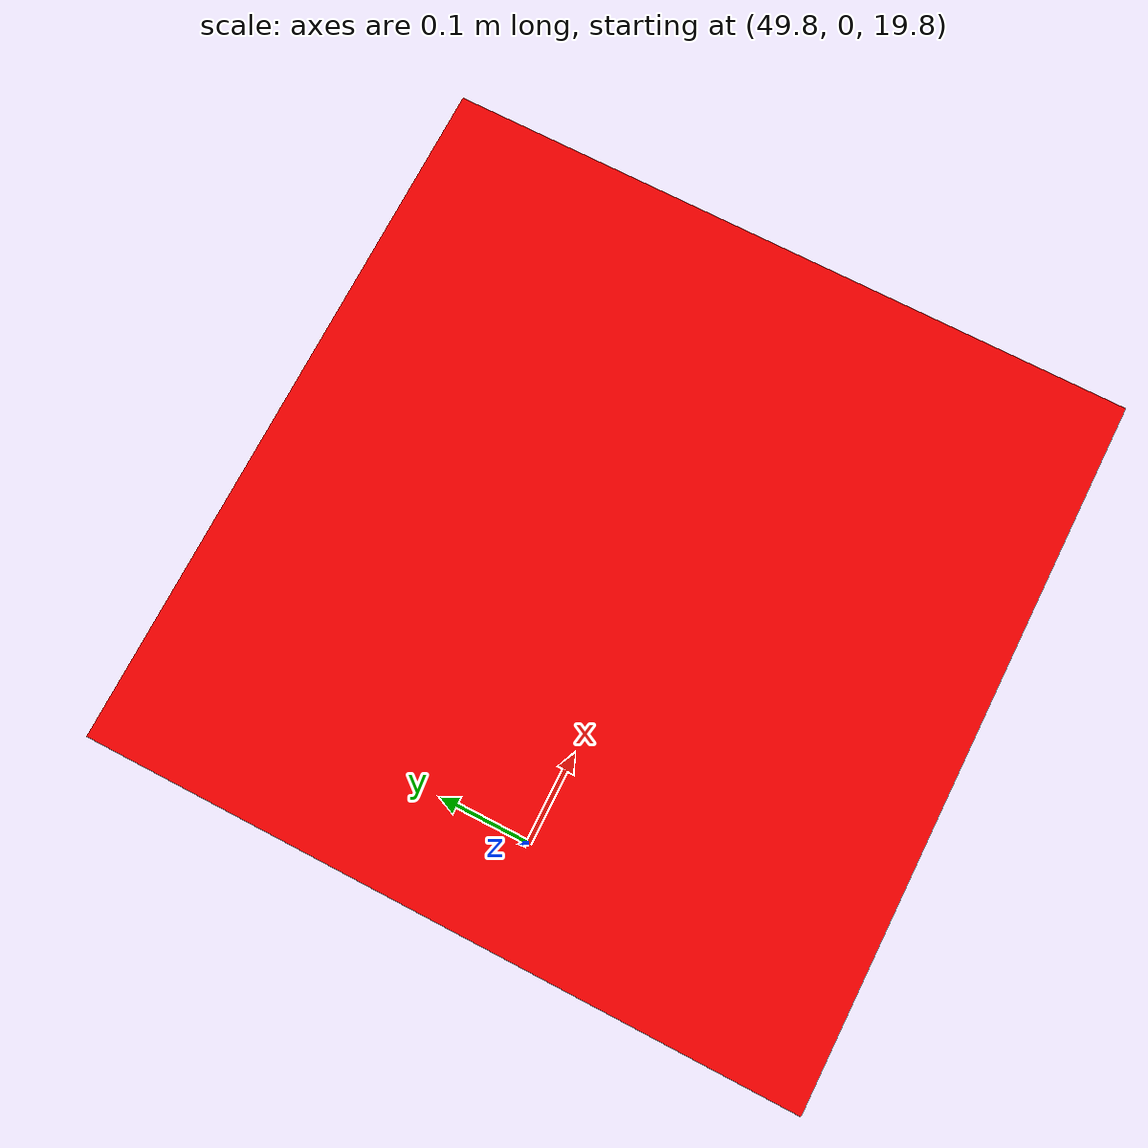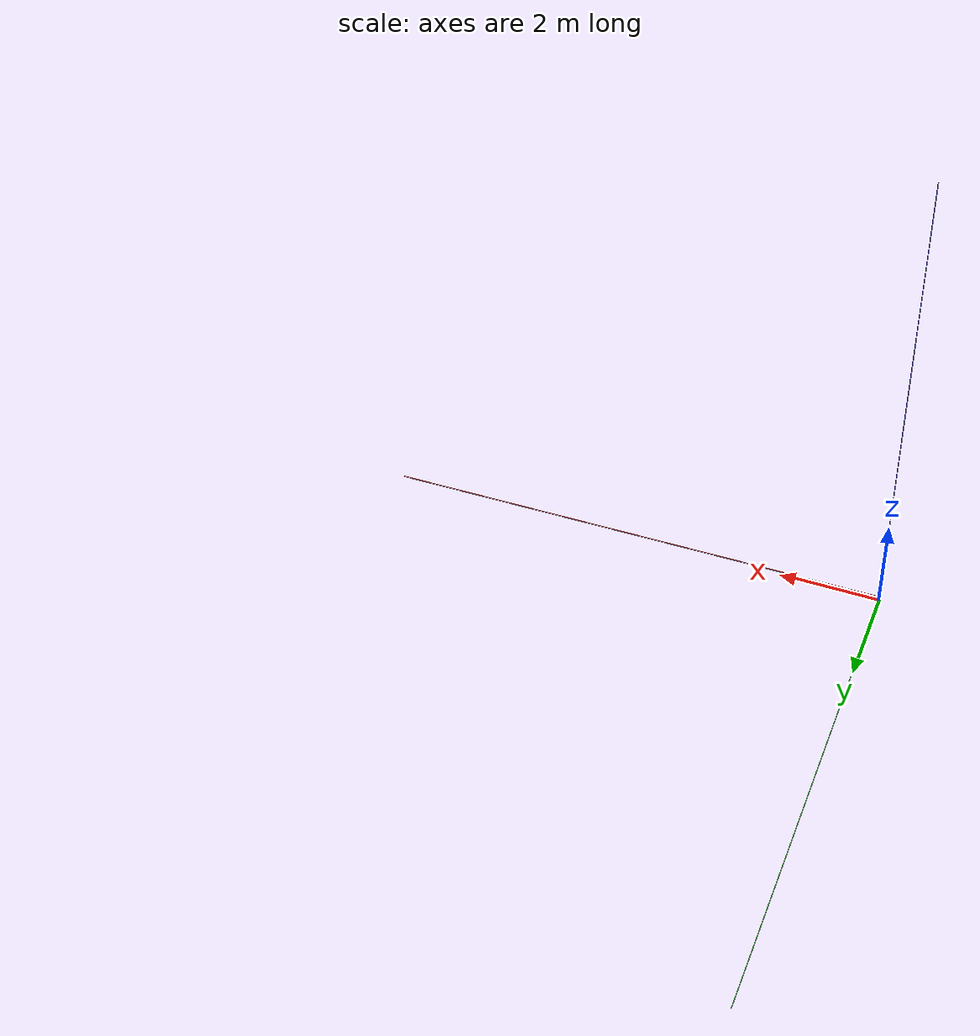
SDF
<sdf version="1.9">
 <world name="iris_runway">
  <physics name="1ms" type="ignore">
   <max_step_size>0.001</max_step_size>
   <real_time_factor>1.0</real_time_factor>
  </physics>
  <plugin filename="gz-sim-physics-system" name="gz::sim::systems::Physics"/>
  <plugin filename="gz-sim-sensors-system" name="gz::sim::systems::Sensors">
   <render_engine>ogre2</render_engine>
  </plugin>
  <plugin filename="gz-sim-user-commands-system" name="gz::sim::systems::UserCommands"/>
  <plugin filename="gz-sim-scene-broadcaster-system" name="gz::sim::systems::SceneBroadcaster"/>
  <plugin filename="gz-sim-imu-system" name="gz::sim::systems::Imu"/>
  <plugin filename="gz-sim-navsat-system" name="gz::sim::systems::NavSat"/>
  <wind><linear_velocity>0 0 0</linear_velocity></wind>
  <plugin filename="gz-sim-wind-effects-system" name="gz::sim::systems::WindEffects">
   <force_approximation_scaling_factor>1</force_approximation_scaling_factor>
  </plugin>
  <scene><ambient>1.0 1.0 1.0</ambient><background>0.8 0.8 0.8</background></scene>
  <spherical_coordinates>
   <latitude_deg>-35.363262</latitude_deg>
   <longitude_deg>149.165237</longitude_deg>
   <elevation>584</elevation>
   <heading_deg>0</heading_deg>
   <surface_model>EARTH_WGS84</surface_model>
  </spherical_coordinates>
  <light type="directional" name="sun">
   <pose>0 0 10 0 0 0</pose>
   <diffuse>0.8 0.8 0.8 1</diffuse>
   <specular>0.8 0.8 0.8 1</specular>
   <attenuation>
    <range>1000</range>
    <constant>0.9</constant>
    <linear>0.01</linear>
    <quadratic>0.001</quadratic>
   </attenuation>
   <direction>-0.5 0.1 -0.9</direction>
  </light>
  <model name="axes">
   <static>1</static>
   <link name="link">
    <visual name="r">
     <cast_shadows>0</cast_shadows>
     <pose>5 0 0.1 0 0 0</pose>
     <geometry><box><size>10 0.01 0.01</size></box></geometry>
     <material>
      <ambient>1 0 0 0.8</ambient>
      <diffuse>1 0 0 0.8</diffuse>
      <emissive>1 0 0 0.8</emissive>
      <specular>0.5 0.5 0.5 0.8</specular>
     </material>
    </visual>
    <visual name="g">
     <cast_shadows>0</cast_shadows>
     <pose>0 5 0.1 0 0 0</pose>
     <geometry><box><size>0.01 10 0.01</size></box></geometry>
     <material>
      <ambient>0 1 0 0.8</ambient>
      <diffuse>0 1 0 0.8</diffuse>
      <emissive>0 1 0 0.8</emissive>
      <specular>0.5 0.5 0.5 0.8</specular>
     </material>
    </visual>
    <visual name="b">
     <cast_shadows>0</cast_shadows>
     <pose>0 0 5.1 0 0 0</pose>
     <geometry><box><size>0.01 0.01 10</size></box></geometry>
     <material>
      <ambient>0 0 1 0.8</ambient>
      <diffuse>0 0 1 0.8</diffuse>
      <emissive>0 0 1 0.8</emissive>
      <specular>0.5 0.5 0.5 0.8</specular>
     </material>
    </visual>
    <sensor name="navsat_sensor" type="navsat"><always_on>1</always_on><update_rate>1</update_rate></sensor>
   </link>
  </model>
  <model name="red_cube">
   <pose>50 0 20 0 0 0</pose>
   <static>false</static>
   <link name="cube_link">
    <enable_wind>true</enable_wind>
    <gravity>false</gravity>
    <visual name="cube_visual">
     <geometry><box><size>0.5 0.5 0.5</size></box></geometry>
     <material><ambient>1 0 0 1</ambient><diffuse>1 0 0 1</diffuse><specular>0.5 0.5 0.5 1</specular></material>
    </visual>
    <collision name="cube_collision"><geometry><box><size>0.5 0.5 0.5</size></box></geometry></collision>
   </link>
   <plugin filename="gz-sim-velocity-control-system" name="gz::sim::systems::VelocityControl">
    <topic>/model/red_cube/cmd_vel</topic>
   </plugin>
  </model>
 </world>
</sdf>
